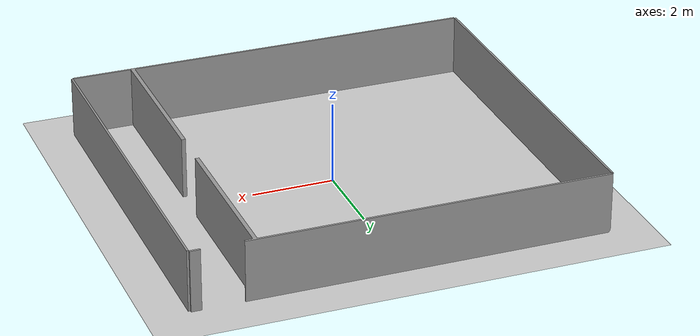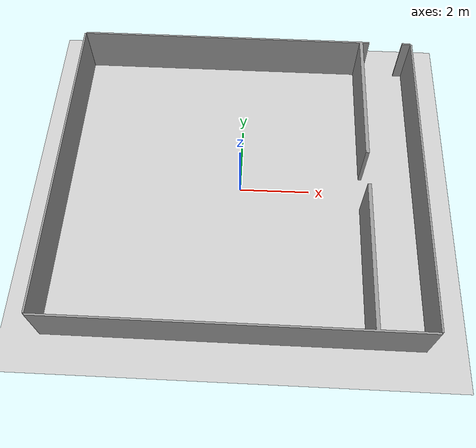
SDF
<sdf version="1.4">
 <world name="default">
  <scene>
   <ambient>0.5 0.5 0.5 1</ambient>
   <shadows>0</shadows>
   <grid>0</grid>
   <background>0.7 0.7 0.7 1</background>
  </scene>
  <physics type="ode">
   <real_time_update_rate>500.0</real_time_update_rate>
   <max_step_size>0.002</max_step_size>
   <ode><solver><type>quick</type><iters>100</iters></solver><constraints><cfm>0.0001</cfm></constraints></ode>
  </physics>
  <light name="user_directional_light_0" type="directional">
   <pose>0 0 5 0 -0 0</pose>
   <diffuse>0.5 0.5 0.5 1</diffuse>
   <specular>0.1 0.1 0.1 1</specular>
   <direction>0.1 0.1 -0.9</direction>
   <attenuation>
    <range>20</range>
    <constant>0.5</constant>
    <linear>0.01</linear>
    <quadratic>0.001</quadratic>
   </attenuation>
  </light>
  <model name="rnd_room_c3_a">
   <link name="link_0">
    <inertial>
     <mass>1</mass>
     <inertia>
      <ixx>0.166667</ixx>
      <ixy>0</ixy>
      <ixz>0</ixz>
      <iyy>0.166667</iyy>
      <iyz>0</iyz>
      <izz>0.166667</izz>
     </inertia>
    </inertial>
    <visual name="visual">
     <geometry><mesh><uri>model://RandomRooms/rnd_room_c2_01.dae</uri><scale>1 1 1</scale></mesh></geometry>
     <material>
      <lighting>1</lighting>
      <script><uri>model://RandomRooms/rnd_room_c2_01.dae</uri><name>Gazebo/Grey</name></script>
      <shader type="pixel"><normal_map>__default__</normal_map></shader>
     </material>
    </visual>
    <collision name="collision">
     <geometry><mesh><uri>model://RandomRooms/rnd_room_c2_01.dae</uri><scale>1 1 1</scale></mesh></geometry>
     <surface>
      <friction>
       <ode><mu>1</mu><mu2>1</mu2><fdir1>0 0 0</fdir1><slip1>0</slip1><slip2>0</slip2></ode>
       <torsional>
        <coefficient>1</coefficient>
        <patch_radius>0</patch_radius>
        <surface_radius>0</surface_radius>
        <use_patch_radius>1</use_patch_radius>
        <ode><slip>0</slip></ode>
       </torsional>
      </friction>
      <bounce><restitution_coefficient>0</restitution_coefficient><threshold>1e+06</threshold></bounce>
      <contact>
       <collide_without_contact>0</collide_without_contact>
       <collide_without_contact_bitmask>1</collide_without_contact_bitmask>
       <collide_bitmask>1</collide_bitmask>
       <ode>
        <soft_cfm>0</soft_cfm>
        <soft_erp>0.2</soft_erp>
        <kp>1e+13</kp>
        <kd>1</kd>
        <max_vel>0.01</max_vel>
        <min_depth>0</min_depth>
       </ode>
       <bullet>
        <split_impulse>1</split_impulse>
        <split_impulse_penetration_threshold>-0.01</split_impulse_penetration_threshold>
        <soft_cfm>0</soft_cfm>
        <soft_erp>0.2</soft_erp>
        <kp>1e+13</kp>
        <kd>1</kd>
       </bullet>
      </contact>
     </surface>
    </collision>
   </link>
   <static>1</static>
  </model>
  <model name="gplane">
   <link name="body">
    <collision name="gplane_coll">
     <geometry><plane><normal>0 0 1</normal><size>25 25</size></plane></geometry>
     <surface><contact><ode><kp>1e+06</kp><kd>1</kd></ode></contact></surface>
     <laser_retro>2000</laser_retro>
    </collision>
    <visual name="gplane_vis">
     <geometry><plane><normal>0 0 1</normal><size>25 25</size></plane></geometry>
     <material>
      <script>
       <uri>model://base_materials/carpet/scripts</uri>
       <uri>model://base_materials/carpet/textures</uri>
       <name>carpet/carpet01</name>
      </script>
     </material>
     <cast_shadows>0</cast_shadows>
    </visual>
    <velocity_decay><linear>0</linear><angular>0</angular></velocity_decay>
   </link>
   <static>1</static>
  </model>
 </world>
</sdf>
